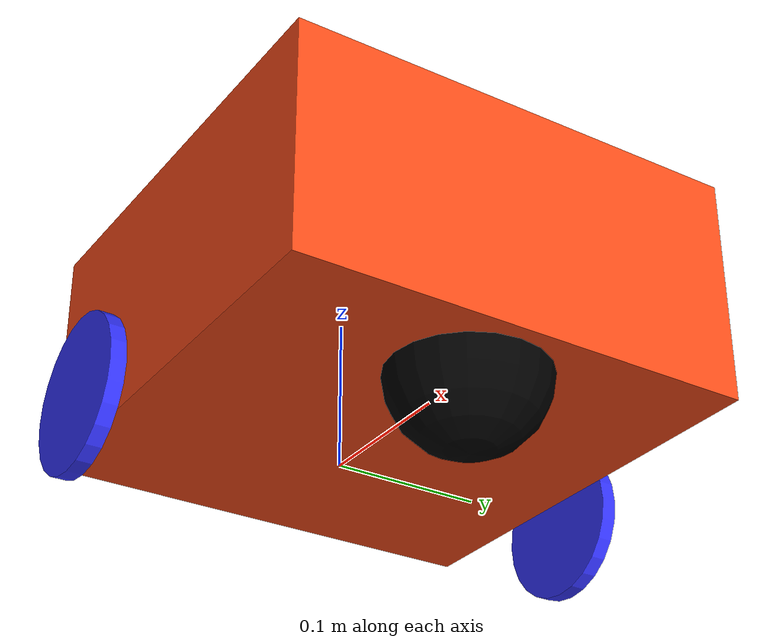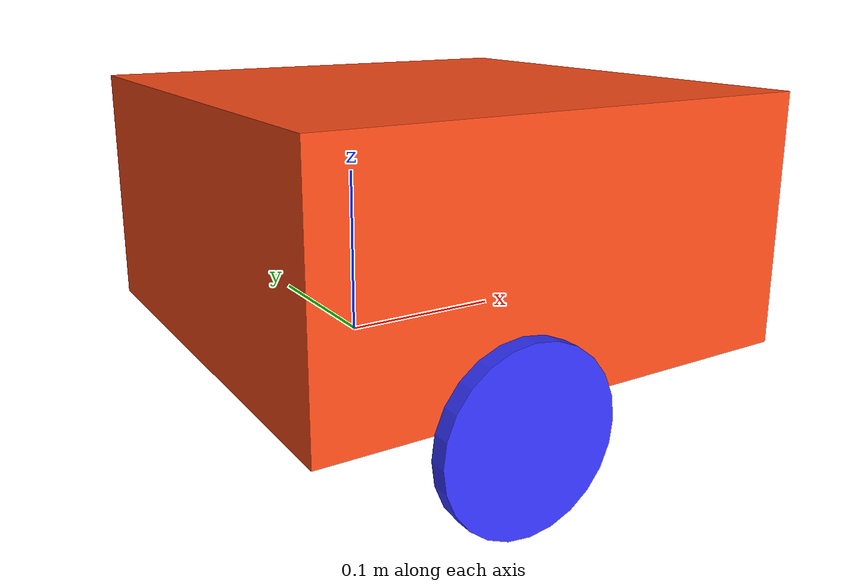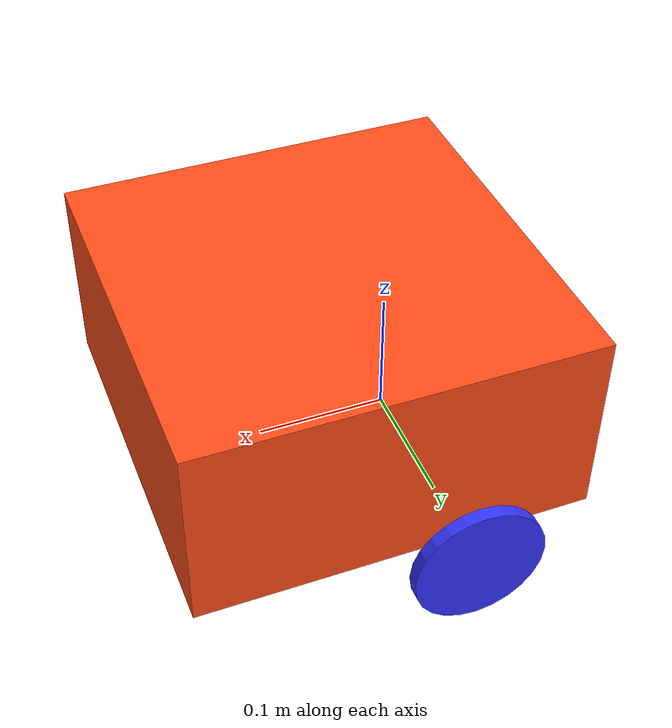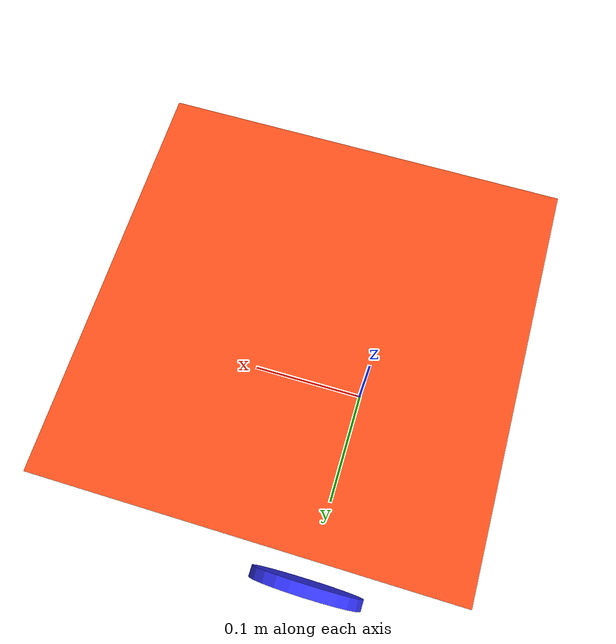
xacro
<?xml version="1.0"?>
<robot xmlns:xacro="http://www.ros.org/wiki/xacro"  >

    <xacro:include filename="inertial_macros.xacro"/>

    <material name="white">
        <color rgba="1 1 1 1"/>
    </material>

    <material name="orange">
        <color rgba="1 0.3 0.1 1"/>
    </material>

    <material name="red">
        <color rgba="1 0 0 1"/>
    </material>

    <material name="blue">
        <color rgba="0.2 0.2 1 1"/>
    </material>

    <material name="black">
        <color rgba="0 0 0 1"/>
    </material>

    <!-- BASE LINK -->
    <link name="base_link">

    </link>

    <!-- BASE FOOTPRINT LINK -->
    <joint name="base_footprint_joint" type="fixed">
        <parent link="base_link"/>
        <child link="base_footprint"/>
        <origin xyz="0 0 0" rpy="0 0 0"/>
    </joint>

    <link name="base_footprint">
    </link>

    <!-- CHASSIS link -->
    <joint name="chassis_joint" type="fixed">
        <parent link="base_link"/>
        <child link="chassis"/>
        <origin xyz="-0.1 0 0" />
    </joint>

    <link name="chassis">
        <visual>
            <origin xyz="0.15 0 0.075"/>
            <geometry>
                <box size="0.3 0.3 0.15"/>
            </geometry>
            <material name="orange"/>
        </visual>
        <collision>
            <origin xyz="0.15 0 0.075"/>
            <geometry>
                <box size="0.3 0.3 0.15"/>
            </geometry>
            <material name="orange"/>
        </collision>
        <xacro:inertial_box mass="0.3" x="0.3" y="0.3" z="0.15">
            <origin xyz="0.15 0 0.075" rpy="0 0 0"/>
        </xacro:inertial_box>
    </link>

    <gazebo reference="chassis">
        <material>Gazebo/Orange</material>
    </gazebo>

    <!-- LEFT WHEEL LINK -->
    <joint name="left_wheel_joint" type="continuous">
        <parent link="base_link"/>
        <child link="left_wheel"/>
        <origin xyz="0 0.175 0" rpy="-${pi/2} 0 0"/>
        <axis xyz="0 0 1"/>
    </joint>

    <link name="left_wheel">
        <visual>
            <geometry>
                <cylinder length="0.01" radius="0.05"/>
            </geometry>
            <material name="blue"/>
        </visual>
        <collision>
            <geometry>
                <sphere radius="0.05"/>
            </geometry>
            <material name="blue"/>
        </collision>
        <xacro:inertial_sphere mass="0.1" radius="0.05">
            <origin xyz="0 0 0" rpy="0 0 0"/>
        </xacro:inertial_sphere>
    </link>
    <gazebo reference="left_wheel">
        <material>Gazebo/Blue </material>
    </gazebo>

    <!-- RIGHT WHEEL LINK -->
    <joint name="right_wheel_joint" type="continuous">
        <parent link="base_link"/>
        <child link="right_wheel"/>
        <origin xyz="0 -0.175 0" rpy="${pi/2} 0 0"/>
        <axis xyz="0 0 -1"/>
    </joint>

    <link name="right_wheel">
        <visual>
            <geometry>
                <cylinder length="0.01" radius="0.05"/>
            </geometry>
            <material name="blue"/>
        </visual>
        <collision>
            <geometry>
                <sphere radius="0.05"/>
            </geometry>
            <material name="blue"/>
        </collision>
        <xacro:inertial_sphere mass="0.1" radius="0.05">
            <origin xyz="0 0 0" rpy="0 0 0"/>
        </xacro:inertial_sphere>
    </link>
    <gazebo reference="right_wheel">
        <material>Gazebo/Blue </material>
    </gazebo>

    <!-- CASTER WHEEL LINK -->
    <joint name="caster_wheel_joint" type="fixed">
        <parent link="chassis"/>
        <child link="caster_wheel"/>
        <origin xyz="0.24 0 0"/>
    </joint>

    <link name="caster_wheel">
        <visual>
            <geometry>
                <sphere radius="0.05"/>
            </geometry>
            <material name="black"/>
        </visual>
        <collision>
            <geometry>
                <sphere radius="0.05"/>
            </geometry>
            <material name="black"/>
        </collision>
        <xacro:inertial_sphere mass="0.1" radius="0.05">
            <origin xyz="0 0 0" rpy="0 0 0"/>
        </xacro:inertial_sphere>
    </link>
    <gazebo reference="caster_wheel">
        <material>Gazebo/Black </material>
        <mu1 value="0.0001"/>
        <mu2 value="0.0001"/>
    </gazebo>

</robot>
